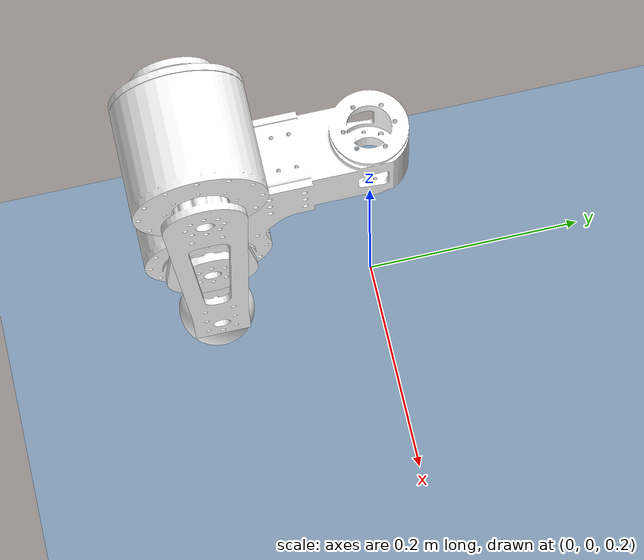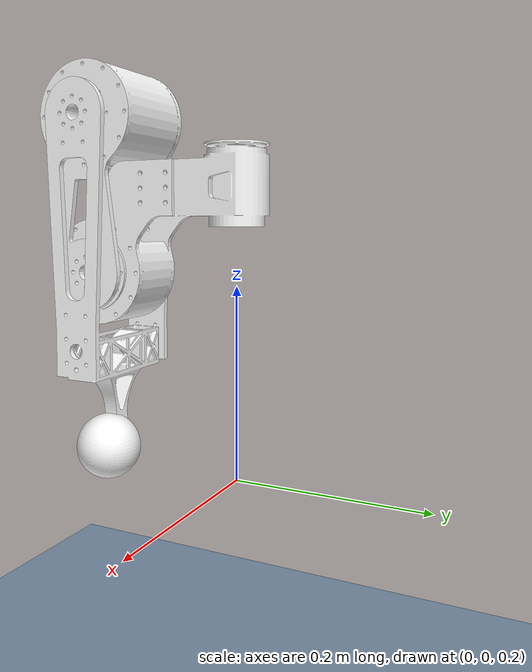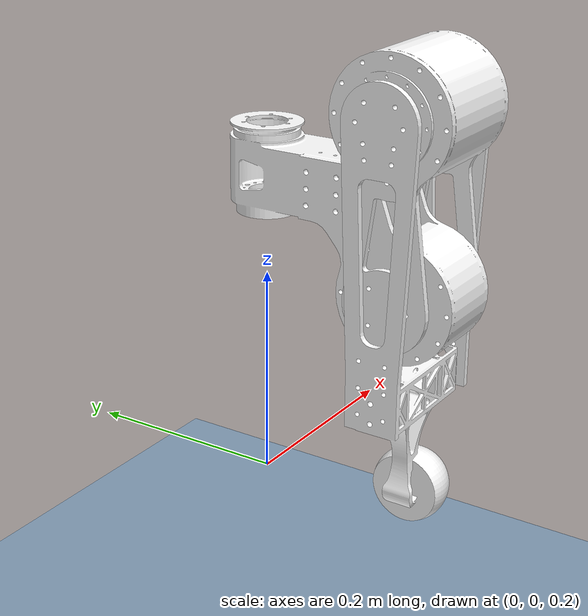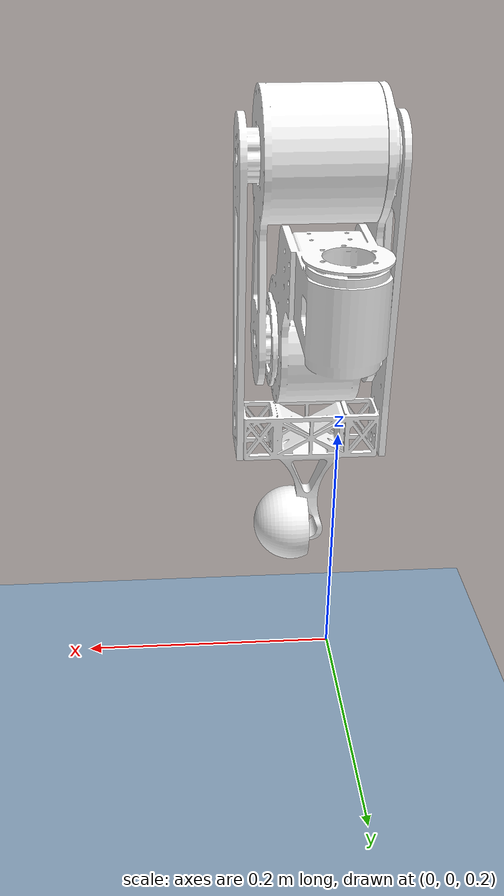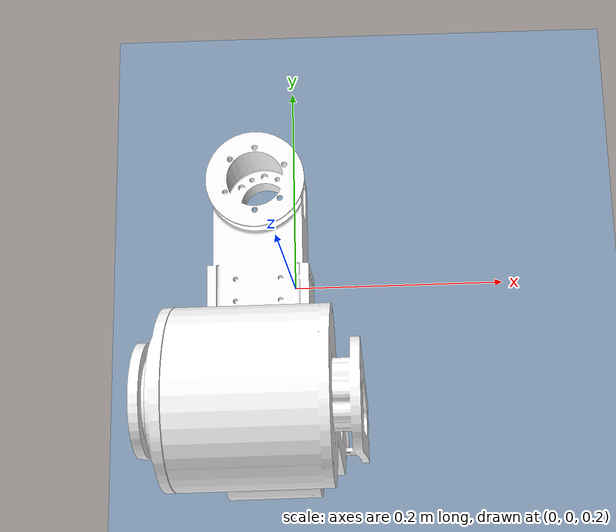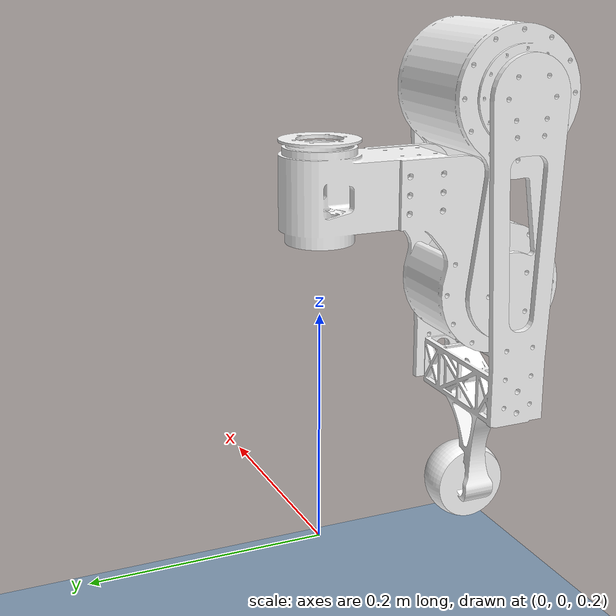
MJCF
<mujoco model="single_leg">
  <compiler angle="radian" meshdir="../meshes/" autolimits="true"/>
  <option timestep="0.002" apirate="500" integrator="RK4" gravity="0 0 -9.806" solver="Newton" noslip_iterations="0"/>

  <asset>
    <mesh name="RF_HIP" file="RF_HIP.STL"/>
    <mesh name="RF_THIGH" file="RF_THIGH.STL"/>
    <mesh name="RF_SHANK" file="RF_SHANK.STL"/>
    <mesh name="RF_FOOT" file="RF_FOOT.STL"/>
  </asset>

  <default>
    <geom contype="1" conaffinity="1" friction="0.6 0.3 0.3" rgba="0.5 0.6 0.7 1" margin="0.001" group="0"/>
  </default>
  <asset>
    <texture name="grid" type="2d" builtin="checker" rgb1=".9 .8 .7" rgb2=".4 .4 .4" width="300" height="300" mark="edge" markrgb=".2 .3 .4"/>
    <material name="grid" texture="grid" texrepeat="1 1" texuniform="true" />
  </asset>
  <visual>
    <global offwidth="1920" offheight="1080"/>
    <rgba com="0.502 1.0 0 0.5" contactforce="0.98 0.4 0.4 0.7" contactpoint="1.0 1.0 0.6 0.4"/>
    <scale com="0.2" forcewidth="0.035" contactwidth="0.10" contactheight="0.04"/>
  </visual>

  <worldbody>
    <light directional="true" diffuse=".8 .8 .8" pos="0 0 10" dir="0 0 -10"/>
    <geom name="ground" type="plane" pos="0 0 0" size="20 20 0.1" material="grid" solimp=".9 .95 .001" solref='-10000 -1000'/>

    <camera name="test" pos="-1.394 -0.905 1.007" xyaxes="0.474 -0.880 0.000 0.397 0.214 0.892"/>
    <camera name="left" pos="0. 1 0.3" xyaxes="-1. 0. 0. 0. 0. 1."/>
    <camera name="right" pos="0. -1 0.3" xyaxes="1. 0. 0. 0. 0. 1."/>
    <camera name="track" mode="trackcom" fovy="45" pos="0.5 -1. 0.35" xyaxes="0.866 0.5 0 0 0 1"/>

    <body name="RF_HIP" pos="0 0 0.5" quat="-3.67321e-06 0 0 1">
      <inertial pos="0 0 0" quat="0.884465 0.459719 0.0735536 -0.0311267" mass="1.432" diaginertia="0.00874465 0.00836423 0.00178828"/>
      <joint name="RF_HAA" pos="0 0 0" axis="0 0 1" range="-0.94 0.94"/>
      <geom type="mesh" contype="0" conaffinity="0" group="1" density="0" rgba="1 1 1 1" mesh="RF_HIP"/>
      <geom type="mesh" rgba="1 1 1 1" mesh="RF_HIP"/>
      <body name="RF_THIGH" pos="0 0.15 -0.086603" quat="-2.59734e-06 0.707105 2.59735e-06 0.707108">
        <inertial pos="0.130351 0 0.00536515" quat="0.701309 -0.0903671 -0.0903671 0.701309" mass="1.088" diaginertia="0.00671689 0.00602451 0.00187415"/>
        <joint name="RF_HFE" pos="0 0 0" axis="0 0 -1" range="-0.1 3.5"/>
        <geom type="mesh" contype="0" conaffinity="0" group="1" density="0" rgba="1 1 1 1" mesh="RF_THIGH"/>
        <geom type="mesh" rgba="1 1 1 1" mesh="RF_THIGH"/>
        <body name="RF_SHANK" pos="0.162 0 0" quat="-2.59734e-06 0.707105 0.707108 -2.59735e-06">
          <inertial pos="8.19758e-05 -0.153794 0.00231183" quat="0.706652 0.0227758 0.0227686 0.706828" mass="0.645" diaginertia="0.0111808 0.0102986 0.00225651"/>
          <joint name="RF_KFE" pos="0 0 0" axis="0 0 -1" range="-0.436 4.25"/>
          <geom type="mesh" contype="0" conaffinity="0" group="1" density="0" rgba="1 1 1 1" mesh="RF_SHANK"/>
          <geom pos="0 -0.35499 0" quat="1.34924e-11 -3.67321e-06 1 -3.67321e-06" type="mesh" contype="0" conaffinity="0" group="1" density="0" rgba="1 1 1 1" mesh="RF_FOOT"/>
          <geom pos="0 -0.35499 0" quat="1.34924e-11 -3.67321e-06 1 -3.67321e-06" type="mesh" rgba="1 1 1 1" mesh="RF_FOOT"/>
        </body>
      </body>
    </body>
  </worldbody>

  <actuator>
    <position name="rf_haa_position" kp="25" ctrlrange="-0.94 0.94" joint="RF_HAA"/>
    <position name="rf_hfe_position" kp="25" ctrlrange="-0.1 3.5" joint="RF_HFE"/>
    <position name="rf_kfe_position" kp="25" ctrlrange="-0.436 4.25" joint="RF_KFE"/>
    <velocity name="rf_haa_velocity" kv="2.5" ctrlrange="-21.0 21.0" joint="RF_HAA"/>
    <velocity name="rf_hfe_velocity" kv="2.5" ctrlrange="-21.0 21.0" joint="RF_HFE"/>
    <velocity name="rf_kfe_velocity" kv="2.5" ctrlrange="-21.0 21.0" joint="RF_KFE"/>
    <motor name="rf_haa_motor" ctrlrange="-33.5 33.5" joint="RF_HAA"/>
    <motor name="rf_hfe_motor" ctrlrange="-33.5 33.5" joint="RF_HFE"/>
    <motor name="rf_kfe_motor" ctrlrange="-33.5 33.5" joint="RF_KFE"/>
  </actuator>
</mujoco>
